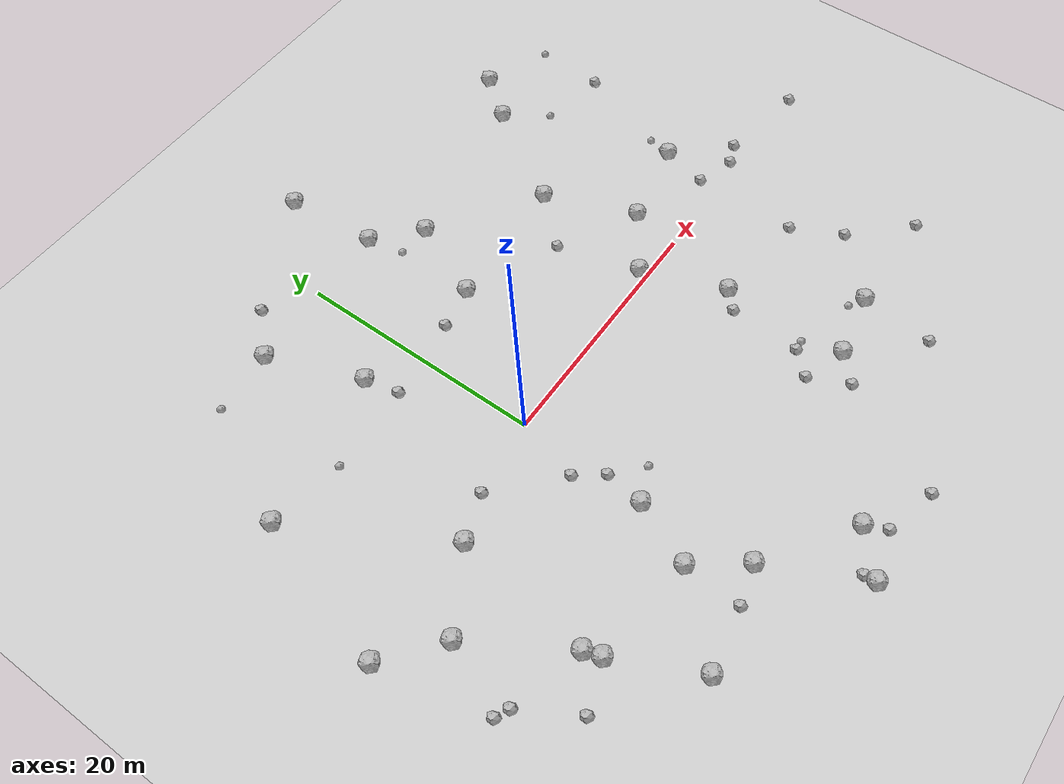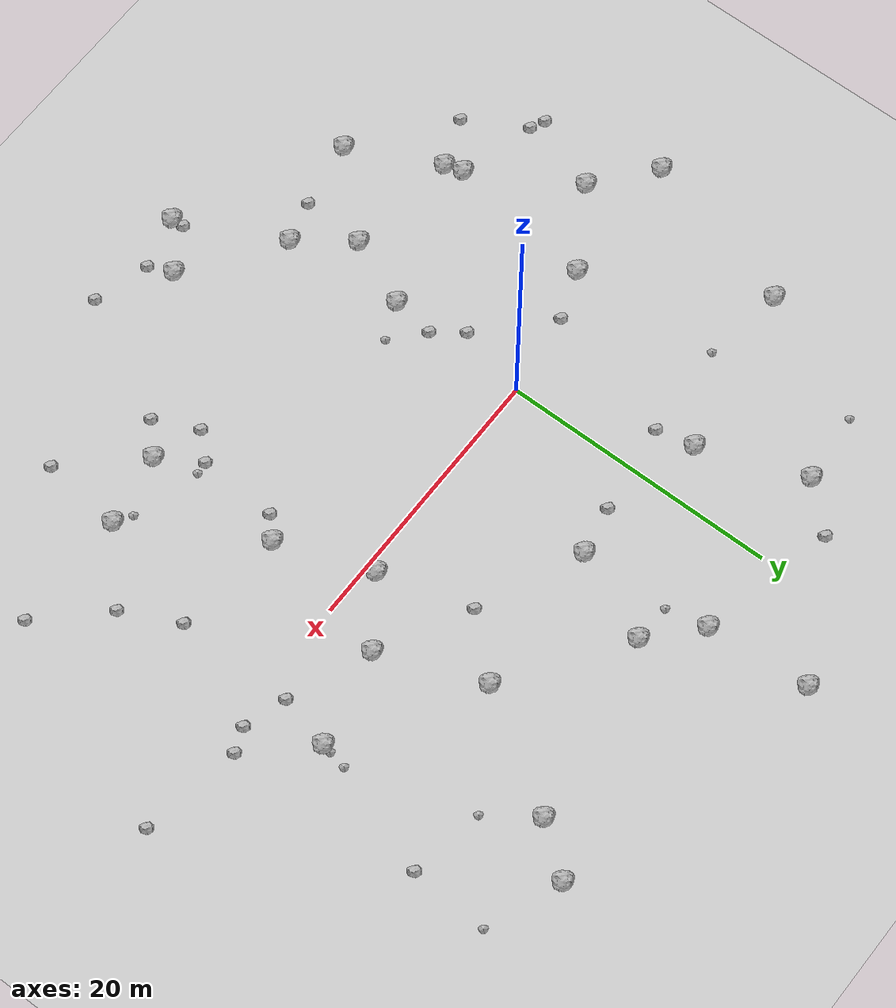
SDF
<sdf version="1.6">
 <world name="default">
  <include><uri>model://custom_ground</uri></include>
  <include><uri>model://sun</uri></include>
  <model name="rock1_0_0">
   <include><uri>model://rock1</uri><pose>7.059993198461207 -23.64071983949531 0.5 0 0 0</pose></include>
  </model>
  <model name="rock1_0_1">
   <include><uri>model://rock1</uri><pose>-9.568092358396786 -2.085759764088259 0.5 0 0 0</pose></include>
  </model>
  <model name="rock1_0_2">
   <include><uri>model://rock1</uri><pose>6.840591712603505 10.629788791995992 0.5 0 0 0</pose></include>
  </model>
  <model name="rock1_0_3">
   <include><uri>model://rock1</uri><pose>5.627926370117663 27.479701073414965 0.5 0 0 0</pose></include>
  </model>
  <model name="rock1_0_4">
   <include><uri>model://rock1</uri><pose>18.518322437376803 -5.965348976231368 0.5 0 0 0</pose></include>
  </model>
  <model name="rock1_0_5">
   <include><uri>model://rock1</uri><pose>25.6214100346198 22.834676432462203 0.5 0 0 0</pose></include>
  </model>
  <model name="rock1_0_6">
   <include><uri>model://rock1</uri><pose>6.199511335580869 20.042120135440555 0.5 0 0 0</pose></include>
  </model>
  <model name="rock1_0_7">
   <include><uri>model://rock1</uri><pose>20.66579332794779 3.937702179982928 0.5 0 0 0</pose></include>
  </model>
  <model name="rock1_0_8">
   <include><uri>model://rock1</uri><pose>23.802954450742455 -15.059992954827841 0.5 0 0 0</pose></include>
  </model>
  <model name="rock1_0_9">
   <include><uri>model://rock1</uri><pose>3.9915463095161208 -26.31926876083099 0.5 0 0 0</pose></include>
  </model>
  <model name="rock1_0_10">
   <include><uri>model://rock1</uri><pose>9.576335678490484 16.962011957994797 0.5 0 0 0</pose></include>
  </model>
  <model name="rock1_0_11">
   <include><uri>model://rock1</uri><pose>-16.010344355347623 9.624958255148577 0.5 0 0 0</pose></include>
  </model>
  <model name="rock1_0_12">
   <include><uri>model://rock1</uri><pose>18.586679443699495 -15.92293498312267 0.5 0 0 0</pose></include>
  </model>
  <model name="rock1_0_13">
   <include><uri>model://rock1</uri><pose>0.41128462244657626 -18.943184868657614 0.5 0 0 0</pose></include>
  </model>
  <model name="rock1_0_14">
   <include><uri>model://rock1</uri><pose>22.988245397435826 19.38813448388911 0.5 0 0 0</pose></include>
  </model>
  <model name="rock1_0_15">
   <include><uri>model://rock1</uri><pose>27.56408539392359 5.390570040301313 0.5 0 0 0</pose></include>
  </model>
  <model name="rock1_0_16">
   <include><uri>model://rock1</uri><pose>-19.473209041985054 -2.2118726432222857 0.5 0 0 0</pose></include>
  </model>
  <model name="rock1_0_17">
   <include><uri>model://rock1</uri><pose>-11.0303805275637 -12.880461278430666 0.5 0 0 0</pose></include>
  </model>
  <model name="rock1_0_18">
   <include><uri>model://rock1</uri><pose>-0.2663588980556355 -10.290820505903241 0.5 0 0 0</pose></include>
  </model>
  <model name="rock1_0_19">
   <include><uri>model://rock1</uri><pose>17.871828647298443 11.274585472599675 0.5 0 0 0</pose></include>
  </model>
  <model name="rock1_0_20">
   <include><uri>model://rock1</uri><pose>-10.627030978070529 -14.202094108196084 0.5 0 0 0</pose></include>
  </model>
  <model name="rock1_0_21">
   <include><uri>model://rock1</uri><pose>-3.749795722601508 11.82701933616682 0.5 0 0 0</pose></include>
  </model>
  <model name="rock1_0_22">
   <include><uri>model://rock1</uri><pose>-6.530196266650703 19.268809205259785 0.5 0 0 0</pose></include>
  </model>
  <model name="rock1_0_23">
   <include><uri>model://rock1</uri><pose>-15.321919436845521 -5.594823327682683 0.5 0 0 0</pose></include>
  </model>
  <model name="rock1_0_24">
   <include><uri>model://rock1</uri><pose>-7.580302732434676 -20.56496442065791 0.5 0 0 0</pose></include>
  </model>
  <model name="rock1_0_25">
   <include><uri>model://rock1</uri><pose>-2.3601899936401125 -15.168892355950154 0.5 0 0 0</pose></include>
  </model>
  <model name="rock1_0_26">
   <include><uri>model://rock1</uri><pose>16.136326328450913 0.7407939559058647 0.5 0 0 0</pose></include>
  </model>
  <model name="rock2_0_0">
   <include><uri>model://rock2</uri><pose>15.069073525620695 -14.724736662522373 0.3 0 0 0</pose></include>
  </model>
  <model name="rock2_0_1">
   <include><uri>model://rock2</uri><pose>32.51958757648092 -15.112338030089173 0.3 0 0 0</pose></include>
  </model>
  <model name="rock2_0_2">
   <include><uri>model://rock2</uri><pose>16.48108537741161 -17.834315164622552 0.3 0 0 0</pose></include>
  </model>
  <model name="rock2_0_3">
   <include><uri>model://rock2</uri><pose>26.55737258562337 1.6203192060827334 0.3 0 0 0</pose></include>
  </model>
  <model name="rock2_0_4">
   <include><uri>model://rock2</uri><pose>-6.0552937582442805 -0.7741367525558012 0.3 0 0 0</pose></include>
  </model>
  <model name="rock2_0_5">
   <include><uri>model://rock2</uri><pose>28.396509532478824 -10.857431025558942 0.3 0 0 0</pose></include>
  </model>
  <model name="rock2_0_6">
   <include><uri>model://rock2</uri><pose>3.883641334240913 -25.39498913512121 0.3 0 0 0</pose></include>
  </model>
  <model name="rock2_0_7">
   <include><uri>model://rock2</uri><pose>3.320729117445616 9.99626235597789 0.3 0 0 0</pose></include>
  </model>
  <model name="rock2_0_8">
   <include><uri>model://rock2</uri><pose>17.061088924010747 -7.282805983142211 0.3 0 0 0</pose></include>
  </model>
  <model name="rock2_0_9">
   <include><uri>model://rock2</uri><pose>0.1492210190474843 -7.176487407325631 0.3 0 0 0</pose></include>
  </model>
  <model name="rock2_0_10">
   <include><uri>model://rock2</uri><pose>11.872134308161026 -26.514324002909365 0.3 0 0 0</pose></include>
  </model>
  <model name="rock2_0_11">
   <include><uri>model://rock2</uri><pose>-14.26947701446145 -15.510794339589282 0.3 0 0 0</pose></include>
  </model>
  <model name="rock2_0_12">
   <include><uri>model://rock2</uri><pose>31.390063689175847 1.2991845364672372 0.3 0 0 0</pose></include>
  </model>
  <model name="rock2_0_13">
   <include><uri>model://rock2</uri><pose>-16.65633445517154 -11.294478058561111 0.3 0 0 0</pose></include>
  </model>
  <model name="rock2_0_14">
   <include><uri>model://rock2</uri><pose>14.269674608735713 7.379101866552716 0.3 0 0 0</pose></include>
  </model>
  <model name="rock2_0_15">
   <include><uri>model://rock2</uri><pose>-1.383004183925184 -5.1149083870121075 0.3 0 0 0</pose></include>
  </model>
  <model name="rock2_0_16">
   <include><uri>model://rock2</uri><pose>38.637093554763624 0.08119987647764049 0.3 0 0 0</pose></include>
  </model>
  <model name="rock2_0_17">
   <include><uri>model://rock2</uri><pose>-2.6726784793421388 -19.729015173731987 0.3 0 0 0</pose></include>
  </model>
  <model name="rock2_0_18">
   <include><uri>model://rock2</uri><pose>30.668259349428936 15.125497853353785 0.3 0 0 0</pose></include>
  </model>
  <model name="rock2_0_19">
   <include><uri>model://rock2</uri><pose>-3.2194349454690823 9.146012693063007 0.3 0 0 0</pose></include>
  </model>
  <model name="rock2_0_20">
   <include><uri>model://rock2</uri><pose>23.140299771550296 -20.848790741307255 0.3 0 0 0</pose></include>
  </model>
  <model name="rock2_0_21">
   <include><uri>model://rock2</uri><pose>26.470240273715916 -6.850473676895586 0.3 0 0 0</pose></include>
  </model>
  <model name="rock2_0_22">
   <include><uri>model://rock2</uri><pose>-17.698132189384634 -10.790020475652959 0.3 0 0 0</pose></include>
  </model>
  <model name="rock2_0_23">
   <include><uri>model://rock2</uri><pose>16.754225942959238 -12.97385489678544 0.3 0 0 0</pose></include>
  </model>
  <model name="rock2_0_24">
   <include><uri>model://rock2</uri><pose>7.775349696814217 -25.340304778377515 0.3 0 0 0</pose></include>
  </model>
  <model name="rock2_0_25">
   <include><uri>model://rock2</uri><pose>-3.708626882464614 22.422890890262934 0.3 0 0 0</pose></include>
  </model>
  <model name="rock2_0_26">
   <include><uri>model://rock2</uri><pose>29.651493915125968 0.6278206416437051 0.3 0 0 0</pose></include>
  </model>
  <model name="rock3_0_0">
   <include><uri>model://rock3</uri><pose>2.3491898193643763 -9.204442021694785 0.2 0 0 0</pose></include>
  </model>
  <model name="rock3_0_1">
   <include><uri>model://rock3</uri><pose>22.540001000702155 -14.354614490306323 0.2 0 0 0</pose></include>
  </model>
  <model name="rock3_0_2">
   <include><uri>model://rock3</uri><pose>6.76027536625449 17.09674335481332 0.2 0 0 0</pose></include>
  </model>
  <model name="rock3_0_3">
   <include><uri>model://rock3</uri><pose>17.63395830533593 -12.945799859115933 0.2 0 0 0</pose></include>
  </model>
  <model name="rock3_0_4">
   <include><uri>model://rock3</uri><pose>30.996342904605953 20.752376255228384 0.2 0 0 0</pose></include>
  </model>
  <model name="rock3_0_5">
   <include><uri>model://rock3</uri><pose>25.27329474382352 16.01890466998219 0.2 0 0 0</pose></include>
  </model>
  <model name="rock3_0_6">
   <include><uri>model://rock3</uri><pose>-10.184243388724695 8.697460794329842 0.2 0 0 0</pose></include>
  </model>
  <model name="rock3_0_7">
   <include><uri>model://rock3</uri><pose>27.63385572935634 6.032230618103121 0.2 0 0 0</pose></include>
  </model>
  <model name="rock3_0_8">
   <include><uri>model://rock3</uri><pose>27.89360442906701 7.340562814018128 0.2 0 0 0</pose></include>
  </model>
  <model name="rock3_0_9">
   <include><uri>model://rock3</uri><pose>-11.69704544032765 18.81299046612149 0.2 0 0 0</pose></include>
  </model>
 </world>
</sdf>
